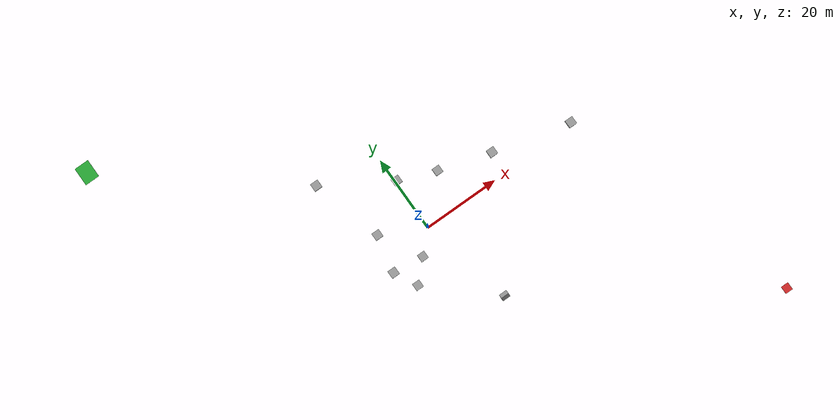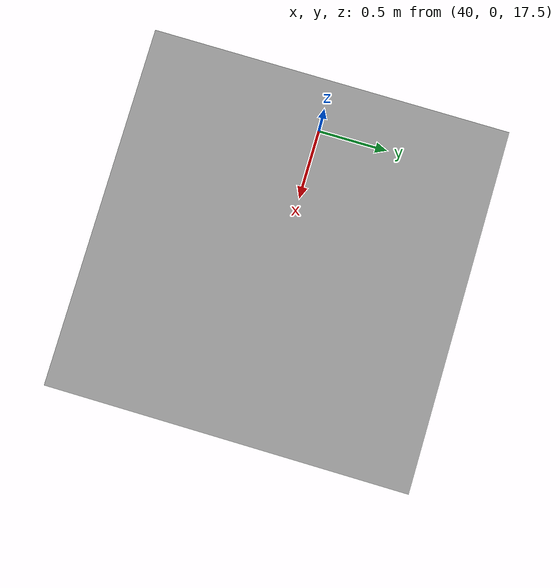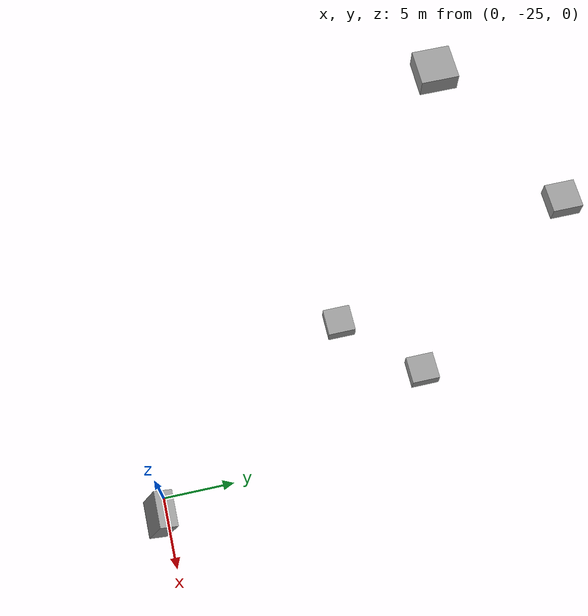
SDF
<sdf version="1.4">
 <world name="default">
  <wind><linear_velocity>2.0 1.0 0.0</linear_velocity><enable_wind>true</enable_wind></wind>
  <scene><ambient>0.5 0.5 0.5 1</ambient><background>0.5 0.5 0.5 1</background><shadows>false</shadows></scene>
  <physics type="ode">
   <gravity>0 0 -9.81</gravity>
   <ode>
    <solver><type>quick</type><iters>10</iters><sor>1.3</sor></solver>
    <constraints>
     <cfm>0.0</cfm>
     <erp>0.2</erp>
     <contact_max_correcting_vel>10</contact_max_correcting_vel>
     <contact_surface_layer>0.001</contact_surface_layer>
    </constraints>
   </ode>
   <max_step_size>0.001</max_step_size>
  </physics>
  <light type="directional" name="directional_light_1">
   <pose>0 20 20 0.1 0.1 0</pose>
   <diffuse>1 1 1 1</diffuse>
   <specular>1 1 1 1</specular>
   <attenuation><range>300</range></attenuation>
   <direction>0.1 0.1 -1</direction>
   <cast_shadows>false</cast_shadows>
  </light>
  <model name="unit_box">
   <static>true</static>
   <pose>-59.844 58.9287 0.1 0 -0 0</pose>
   <link name="link">
    <inertial>
     <mass>1</mass>
     <inertia>
      <ixx>0.166667</ixx>
      <ixy>0</ixy>
      <ixz>0</ixz>
      <iyy>0.166667</iyy>
      <iyz>0</iyz>
      <izz>0.166667</izz>
     </inertia>
    </inertial>
    <collision name="collision"><geometry><box><size>3.81026 4.7659 0.1</size></box></geometry></collision>
    <visual name="visual">
     <geometry><box><size>3.81026 4.7659 0.1</size></box></geometry>
     <material>
      <script><name>Gazebo/Green</name><uri>file://media/materials/scripts/gazebo.material</uri></script>
     </material>
    </visual>
   </link>
  </model>
  <model name="unit_box_clone">
   <static>true</static>
   <pose>62.5097 -62.2278 0.1 -2e-06 -0 6.4e-05</pose>
   <link name="link">
    <inertial>
     <mass>1</mass>
     <inertia>
      <ixx>0.166667</ixx>
      <ixy>0</ixy>
      <ixz>0</ixz>
      <iyy>0.166667</iyy>
      <iyz>0</iyz>
      <izz>0.166667</izz>
     </inertia>
    </inertial>
    <collision name="collision"><geometry><box><size>2.0 2.0 0.1</size></box></geometry></collision>
    <visual name="visual">
     <geometry><box><size>2.0 2.0 0.1</size></box></geometry>
     <material>
      <script><name>Gazebo/Red</name><uri>file://media/materials/scripts/gazebo.material</uri></script>
     </material>
    </visual>
   </link>
  </model>
  <model name="obstacle_box_1">
   <static>true</static>
   <pose>22 5 17 0 0 0</pose>
   <link name="link">
    <collision name="collision"><geometry><box><size>2 2 1</size></box></geometry></collision>
    <visual name="visual">
     <geometry><box><size>2 2 1</size></box></geometry>
     <material>
      <script><name>Gazebo/Gray</name><uri>file://media/materials/scripts/gazebo.material</uri></script>
     </material>
    </visual>
   </link>
  </model>
  <model name="obstacle_box_2">
   <static>true</static>
   <pose>-11.0 5 11 0 0 0</pose>
   <link name="link">
    <collision name="collision"><geometry><box><size>2 2 1</size></box></geometry></collision>
    <visual name="visual">
     <geometry><box><size>2 2 1</size></box></geometry>
     <material>
      <script><name>Gazebo/Gray</name><uri>file://media/materials/scripts/gazebo.material</uri></script>
     </material>
    </visual>
   </link>
  </model>
  <model name="obstacle_box_3">
   <static>true</static>
   <pose>5 -24 16.5 20.0 0 0</pose>
   <link name="link">
    <collision name="collision"><geometry><box><size>2 2 1</size></box></geometry></collision>
    <visual name="visual">
     <geometry><box><size>2 2 1</size></box></geometry>
     <material>
      <script><name>Gazebo/Gray</name><uri>file://media/materials/scripts/gazebo.material</uri></script>
     </material>
    </visual>
   </link>
  </model>
  <model name="obstacle_box_4">
   <static>true</static>
   <pose>-5 -5 0.5 0 0 0</pose>
   <link name="link">
    <collision name="collision"><geometry><box><size>2 2 1</size></box></geometry></collision>
    <visual name="visual">
     <geometry><box><size>2 2 1</size></box></geometry>
     <material>
      <script><name>Gazebo/Gray</name><uri>file://media/materials/scripts/gazebo.material</uri></script>
     </material>
    </visual>
   </link>
  </model>
  <model name="obstacle_box_5">
   <static>true</static>
   <pose>0 12.5 16.1 0 0 0</pose>
   <link name="link">
    <collision name="collision"><geometry><box><size>2 2 1</size></box></geometry></collision>
    <visual name="visual">
     <geometry><box><size>2 2 1</size></box></geometry>
     <material>
      <script><name>Gazebo/Gray</name><uri>file://media/materials/scripts/gazebo.material</uri></script>
     </material>
    </visual>
   </link>
  </model>
  <model name="obstacle_box_6">
   <static>true</static>
   <pose>-13.0 -5 25.0 0 0 0</pose>
   <link name="link">
    <collision name="collision"><geometry><box><size>2 2 1</size></box></geometry></collision>
    <visual name="visual">
     <geometry><box><size>2 2 1</size></box></geometry>
     <material>
      <script><name>Gazebo/Gray</name><uri>file://media/materials/scripts/gazebo.material</uri></script>
     </material>
    </visual>
   </link>
  </model>
  <model name="obstacle_box_7">
   <static>true</static>
   <pose>-16 22 20 0 0 0</pose>
   <link name="link">
    <collision name="collision"><geometry><box><size>2 2 1</size></box></geometry></collision>
    <visual name="visual">
     <geometry><box><size>2 2 1</size></box></geometry>
     <material>
      <script><name>Gazebo/Gray</name><uri>file://media/materials/scripts/gazebo.material</uri></script>
     </material>
    </visual>
   </link>
  </model>
  <model name="obstacle_box_8">
   <static>true</static>
   <pose>41 0 18 0 0 0</pose>
   <link name="link">
    <collision name="collision"><geometry><box><size>2 2 1</size></box></geometry></collision>
    <visual name="visual">
     <geometry><box><size>2 2 1</size></box></geometry>
     <material>
      <script><name>Gazebo/Gray</name><uri>file://media/materials/scripts/gazebo.material</uri></script>
     </material>
    </visual>
   </link>
  </model>
  <model name="obstacle_box_9">
   <static>true</static>
   <pose>10 10 0.5 0 0 0</pose>
   <link name="link">
    <collision name="collision"><geometry><box><size>2 2 1</size></box></geometry></collision>
    <visual name="visual">
     <geometry><box><size>2 2 1</size></box></geometry>
     <material>
      <script><name>Gazebo/Gray</name><uri>file://media/materials/scripts/gazebo.material</uri></script>
     </material>
    </visual>
   </link>
  </model>
  <model name="obstacle_box_10">
   <static>true</static>
   <pose>-10 -10 0.5 0 0 0</pose>
   <link name="link">
    <collision name="collision"><geometry><box><size>2 2 1</size></box></geometry></collision>
    <visual name="visual">
     <geometry><box><size>2 2 1</size></box></geometry>
     <material>
      <script><name>Gazebo/Gray</name><uri>file://media/materials/scripts/gazebo.material</uri></script>
     </material>
    </visual>
   </link>
  </model>
 </world>
</sdf>
